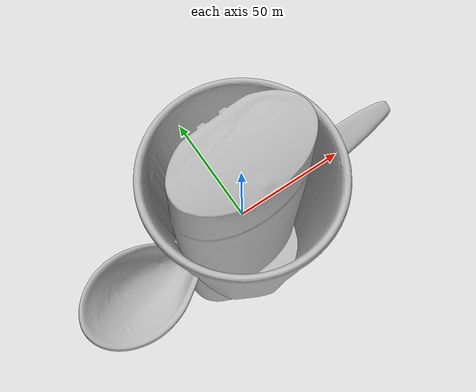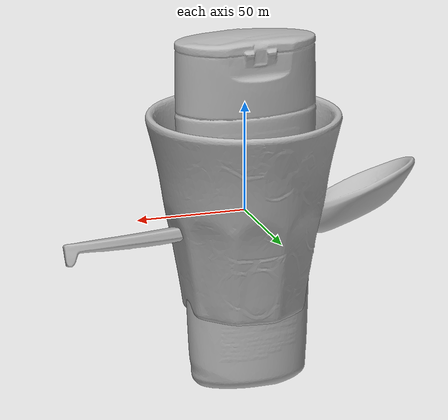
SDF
<sdf version="1.4">
 <world name="default">
  <light name="light1" type="point">
   <pose>0 0 1 0 0 0</pose>
   <diffuse>3 3 3 1</diffuse>
   <specular>3 3 3 1</specular>
  </light>
  <light name="light2" type="point">
   <pose>0 0.5 2 0 0 0</pose>
   <diffuse>1 1 1 1</diffuse>
   <specular>1 1 1 1</specular>
  </light>
  <light name="light3" type="point">
   <pose>0 0.5 2 0 0 0</pose>
   <diffuse>3 3 3 1</diffuse>
   <specular>3 3 3 1</specular>
  </light>
  <scene><ambient>0.7 0.7 0.7</ambient></scene>
  <model name="bottle1">
   <link name="link_bottle1">
    <collision name="default">
     <geometry>
      <mesh><uri>model://pure_zhen/collision_meshes/collision.obj</uri><scale>1.0 1.0 1.0</scale></mesh>
     </geometry>
     <surface><friction><ode><mu>0.5</mu><mu2>0.5</mu2></ode></friction></surface>
    </collision>
    <visual name="default">
     <geometry>
      <mesh><uri>model://pure_zhen/visual_meshes/visual.dae</uri><scale>1.0 1.0 1.0</scale></mesh>
     </geometry>
    </visual>
    <inertial>
     <mass>0.21128538250923157</mass>
     <pose>-8.582300506532192e-05 0.0002452346670906991 -0.0015797390369698405 -0.027642443229877835 0.005619248866174896 0.3057200614584077</pose>
     <inertia>
      <ixx>0.00063332287</ixx>
      <iyy>0.00063348823</iyy>
      <izz>6.6904315e-05</izz>
      <ixy>0</ixy>
      <ixz>0</ixz>
      <iyz>0</iyz>
     </inertia>
    </inertial>
   </link>
   <pose>-0.19961942732334137 0.22807705402374268 0.09196051955223083 0.016287608070932543 0.00473987142529752 -0.011607670525877136</pose>
  </model>
  <model name="bottle2">
   <link name="link_bottle2">
    <collision name="default">
     <geometry>
      <mesh><uri>model://conditioner/collision_meshes/collision.obj</uri><scale>1.0 1.0 1.0</scale></mesh>
     </geometry>
     <surface><friction><ode><mu>0.5</mu><mu2>0.5</mu2></ode></friction></surface>
    </collision>
    <visual name="default">
     <geometry>
      <mesh><uri>model://conditioner/visual_meshes/visual.dae</uri><scale>1.0 1.0 1.0</scale></mesh>
     </geometry>
    </visual>
    <inertial>
     <mass>0.3611464500427246</mass>
     <pose>-0.00055994390277192 -0.0001729748910292983 0.004359682556241751 -0.005038374424784669 0.01530604350153207 0.015072341368129788</pose>
     <inertia>
      <ixx>0.00078562286</ixx>
      <iyy>0.0008415716</iyy>
      <izz>0.00012113213</izz>
      <ixy>0</ixy>
      <ixz>0</ixz>
      <iyz>0</iyz>
     </inertia>
    </inertial>
   </link>
   <pose>-0.2911164462566376 0.2470666617155075 0.0812295526266098 0.036910743260483846 -0.0156739765915009 0.04256262412511177</pose>
  </model>
  <model name="silverware1">
   <link name="link_silverware1">
    <collision name="default">
     <geometry>
      <mesh><uri>model://doraemon_spoon/collision_meshes/collision.obj</uri><scale>1.0 1.0 1.0</scale></mesh>
     </geometry>
     <surface><friction><ode><mu>0.5</mu><mu2>0.5</mu2></ode></friction></surface>
    </collision>
    <visual name="default">
     <geometry>
      <mesh><uri>model://doraemon_spoon/visual_meshes/visual.dae</uri><scale>1.0 1.0 1.0</scale></mesh>
     </geometry>
    </visual>
    <inertial>
     <mass>0.02099660225212574</mass>
     <pose>-0.02216508239507675 -0.0006374581134878099 -0.003332545980811119 -0.009147162014623967 0.07380421234862718 -0.01412382746948542</pose>
     <inertia>
      <ixx>1.6446534e-06</ixx>
      <iyy>4.671061e-05</iyy>
      <izz>4.7504738e-05</izz>
      <ixy>0</ixy>
      <ixz>0</ixz>
      <iyz>0</iyz>
     </inertia>
    </inertial>
   </link>
   <pose>0.21024563908576965 0.2860281765460968 0.01473932433873415 0.27902015249095513 -0.010337288661309486 0.0947684412782622</pose>
  </model>
  <model name="stationery1">
   <link name="link_stationery1">
    <collision name="default">
     <geometry>
      <mesh><uri>model://correction_fuid/collision_meshes/collision.obj</uri><scale>1.0 1.0 1.0</scale></mesh>
     </geometry>
     <surface><friction><ode><mu>0.5</mu><mu2>0.5</mu2></ode></friction></surface>
    </collision>
    <visual name="default">
     <geometry>
      <mesh><uri>model://correction_fuid/visual_meshes/visual.dae</uri><scale>1.0 1.0 1.0</scale></mesh>
     </geometry>
    </visual>
    <inertial>
     <mass>0.046645622700452805</mass>
     <pose>-0.00012557735317386687 -0.0009722909890115261 -0.001618212671019137 -0.010846607840907904 0.019488357502694276 -0.015992455488392</pose>
     <inertia>
      <ixx>4.5177083e-05</ixx>
      <iyy>2.7341744e-06</iyy>
      <izz>4.635291e-05</izz>
      <ixy>0</ixy>
      <ixz>0</ixz>
      <iyz>0</iyz>
     </inertia>
    </inertial>
   </link>
   <pose>0.2895418703556061 0.19997930526733398 0.009632831439375877 -0.001727129653505804 -0.056167743923765674 0.07530158042467598</pose>
  </model>
  <model name="bowl1">
   <link name="link_bowl1">
    <collision name="default">
     <geometry>
      <mesh><uri>model://doraemon_bowl/collision_meshes/collision.obj</uri><scale>1.0 1.0 1.0</scale></mesh>
     </geometry>
     <surface><friction><ode><mu>0.5</mu><mu2>0.5</mu2></ode></friction></surface>
    </collision>
    <visual name="default">
     <geometry>
      <mesh><uri>model://doraemon_bowl/visual_meshes/visual.dae</uri><scale>1.0 1.0 1.0</scale></mesh>
     </geometry>
    </visual>
    <inertial>
     <mass>0.11811670660972595</mass>
     <pose>-0.014629551209509373 0.0004857121384702623 -0.0020864885300397873 -0.00509396228069995 -0.10568398533611668 -0.02642645986873745</pose>
     <inertia>
      <ixx>0.00016378764</ixx>
      <iyy>0.00021554313</iyy>
      <izz>0.00031711452</izz>
      <ixy>0</ixy>
      <ixz>0</ixz>
      <iyz>0</iyz>
     </inertia>
    </inertial>
   </link>
   <pose>0.17016400396823883 -0.360165536403656 0.025905488058924675 0.008597763059220949 0.006343989681988095 1.2237209913937655e-05</pose>
  </model>
  <model name="cup1">
   <link name="link_cup1">
    <collision name="default">
     <geometry>
      <mesh><uri>model://hello_kitty_cup/collision_meshes/collision.obj</uri><scale>1.0 1.0 1.0</scale></mesh>
     </geometry>
     <surface><friction><ode><mu>0.5</mu><mu2>0.5</mu2></ode></friction></surface>
    </collision>
    <visual name="default">
     <geometry>
      <mesh><uri>model://hello_kitty_cup/visual_meshes/visual.dae</uri><scale>1.0 1.0 1.0</scale></mesh>
     </geometry>
    </visual>
    <inertial>
     <mass>0.06522195786237717</mass>
     <pose>0.00027251147548668087 0.0002795039035845548 0.003044978016987443 0.05779148941225366 0.007964866585370347 -0.020452001862605422</pose>
     <inertia>
      <ixx>8.981858e-05</ixx>
      <iyy>9.081978e-05</iyy>
      <izz>7.573251e-05</izz>
      <ixy>0</ixy>
      <ixz>0</ixz>
      <iyz>0</iyz>
     </inertia>
    </inertial>
   </link>
   <pose>0.10040612518787384 -0.20961445569992065 0.04621627926826477 -0.005880021275191822 0.010794831717534674 -3.3259770273035386e-05</pose>
  </model>
  <model name="plate1">
   <link name="link_plate1">
    <collision name="default">
     <geometry>
      <mesh><uri>model://hello_kitty_plate/collision_meshes/collision.obj</uri><scale>1.0 1.0 1.0</scale></mesh>
     </geometry>
     <surface><friction><ode><mu>0.5</mu><mu2>0.5</mu2></ode></friction></surface>
    </collision>
    <visual name="default">
     <geometry>
      <mesh><uri>model://hello_kitty_plate/visual_meshes/visual.dae</uri><scale>1.0 1.0 1.0</scale></mesh>
     </geometry>
    </visual>
    <inertial>
     <mass>0.08260300010442734</mass>
     <pose>0.0073142931796610355 0.0002893725468311459 -0.0027947169728577137 -0.00010432002488368626 -0.007054440417891238 -0.014449022362072891</pose>
     <inertia>
      <ixx>0.0001592833</ixx>
      <iyy>0.00030061565</iyy>
      <izz>0.0004564546</izz>
      <ixy>0</ixy>
      <ixz>0</ixz>
      <iyz>0</iyz>
     </inertia>
    </inertial>
   </link>
   <pose>0.2900298833847046 -0.19004195928573608 0.008291449397802353 0.00046604869113090294 0.004173330937396955 -2.552206939736207e-06</pose>
  </model>
  <model name="box4">
   <link name="link_box4">
    <collision name="default">
     <geometry>
      <mesh><uri>model://wooden_puzzle1/collision_meshes/collision.obj</uri><scale>1.0 1.0 1.0</scale></mesh>
     </geometry>
     <surface><friction><ode><mu>0.5</mu><mu2>0.5</mu2></ode></friction></surface>
    </collision>
    <visual name="default">
     <geometry>
      <mesh><uri>model://wooden_puzzle1/visual_meshes/visual.dae</uri><scale>1.0 1.0 1.0</scale></mesh>
     </geometry>
    </visual>
    <inertial>
     <mass>0.034562814980745316</mass>
     <pose>-0.0001735068071866408 7.97226166469045e-05 -9.191555000143126e-05 -0.07784459827727222 -0.2636103773563706 -0.5528705263726328</pose>
     <inertia>
      <ixx>6.5210584e-06</ixx>
      <iyy>6.395525e-06</iyy>
      <izz>6.471823e-06</izz>
      <ixy>0</ixy>
      <ixz>0</ixz>
      <iyz>0</iyz>
     </inertia>
    </inertial>
   </link>
   <pose>0.29000669717788696 -0.4000062942504883 0.01686667464673519 0.006190170932843799 -0.0097094202907914 -0.00013452557813598955</pose>
  </model>
 </world>
</sdf>
